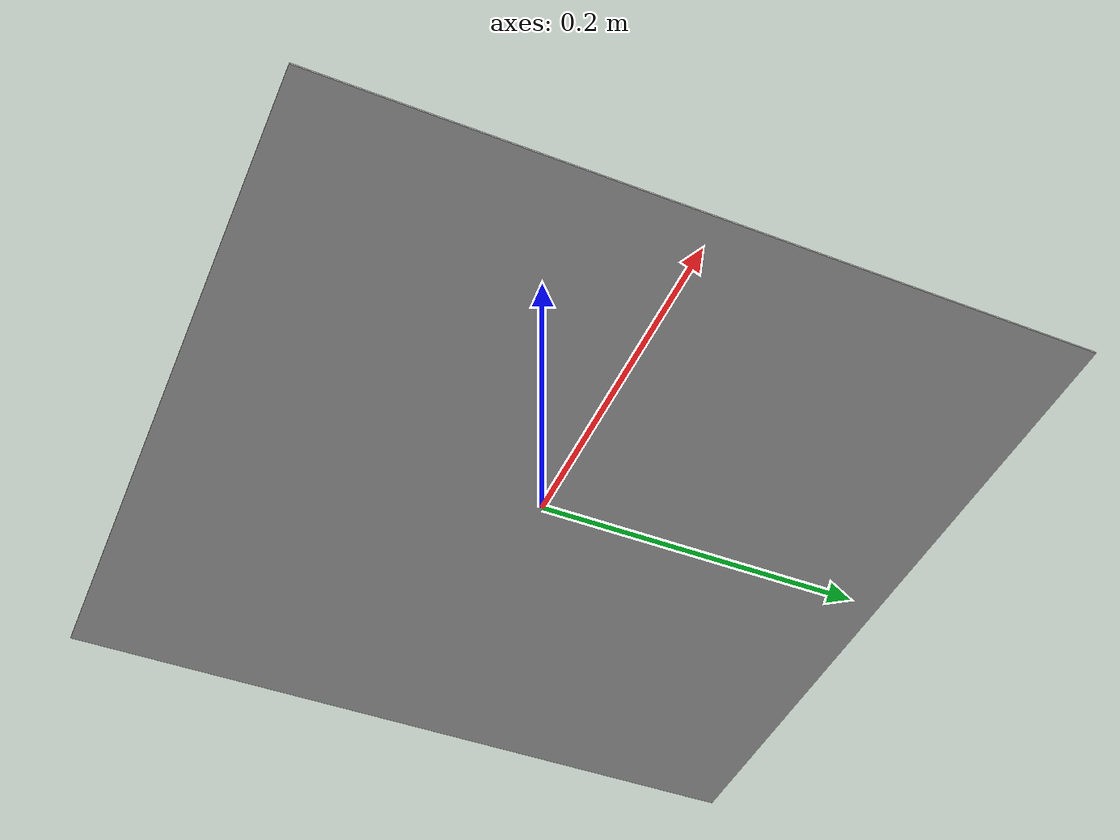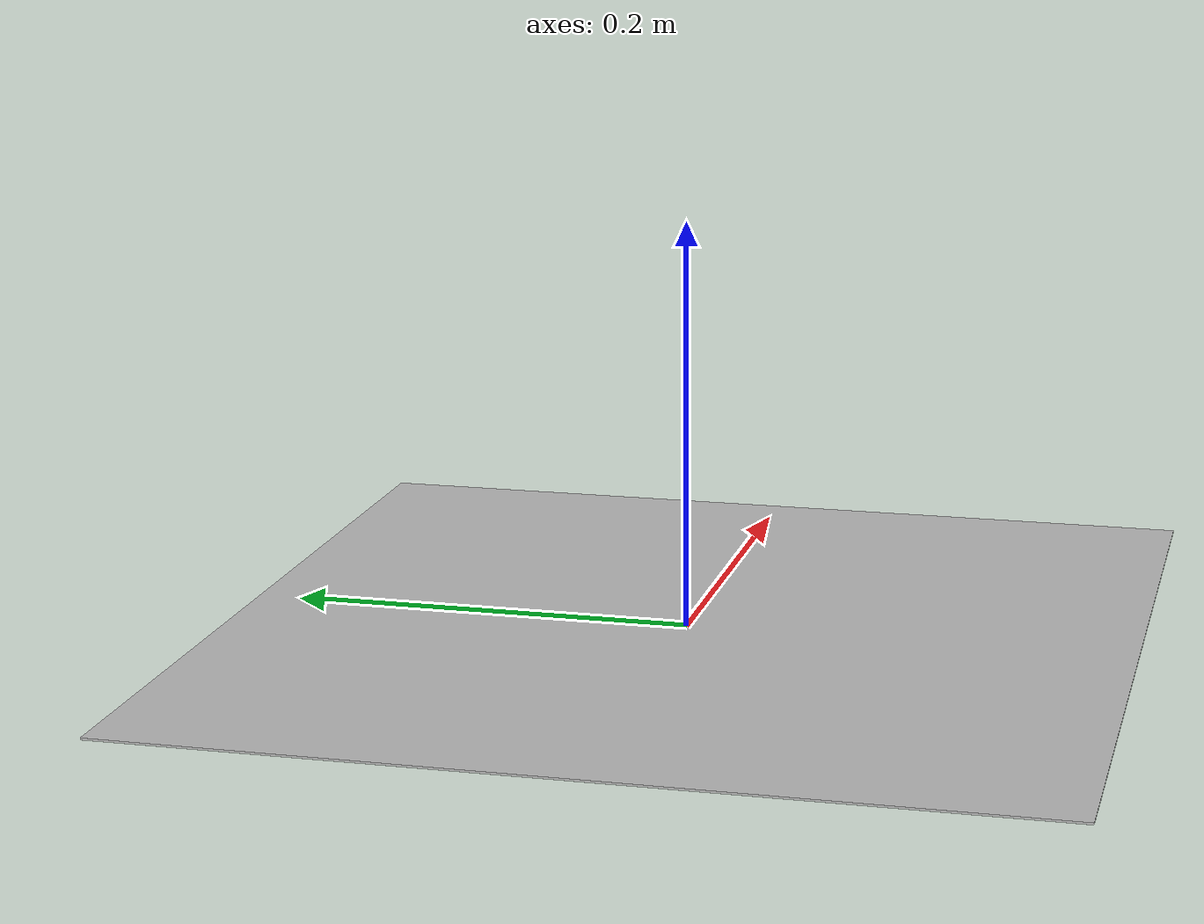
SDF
<?xml version="1.0"?>
<sdf version="1.5">
    <model name="aruco_106">
        <static>true</static>
        <link name="marker_106_link">
            <pose>0 0 1e-3 0 0 1.5707963267948966</pose>
            <collision name="collision_marker_106">
                <geometry>
                    <box>
                        <size>0.44 0.44 1e-3</size>
                    </box>
                </geometry>
            </collision>
            <visual name="visual_marker_106">
                <cast_shadows>false</cast_shadows>
                <geometry>
                    <box>
                        <size>0.44 0.44 1e-3</size>
                    </box>
                </geometry>
                <material>
                    <script>
                        <uri>model://aruco_106/materials/scripts</uri>
                        <uri>model://aruco_106/materials/textures</uri>
                        <name>aruco/marker_106</name>
                    </script>
                </material>
            </visual>
        </link>
    </model>
</sdf>
